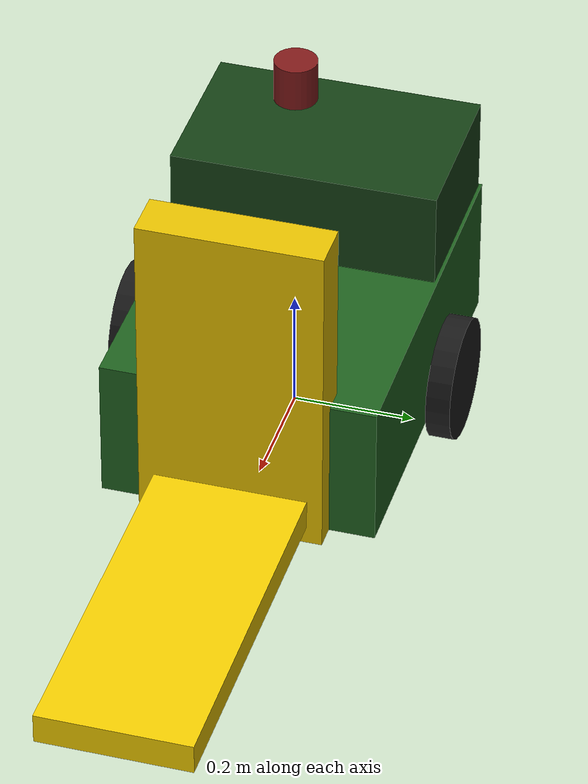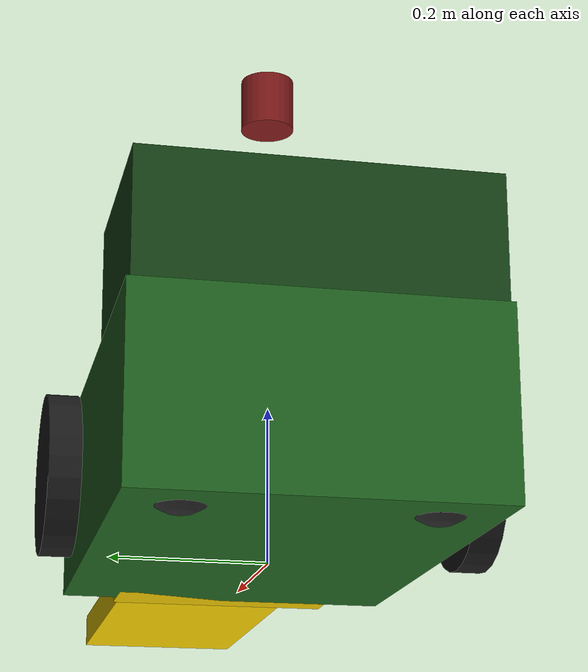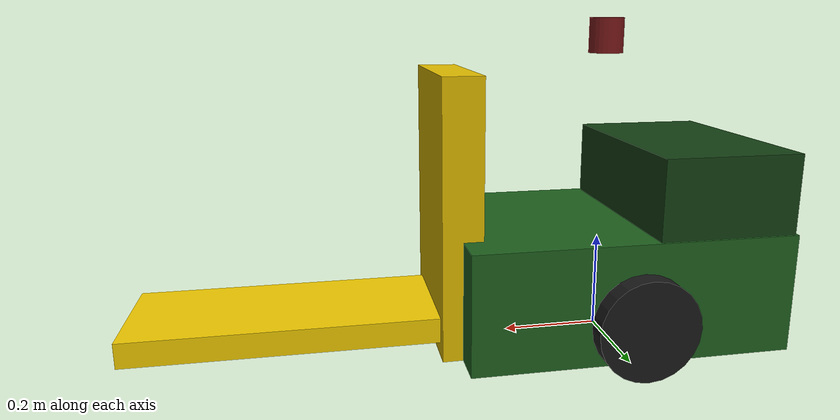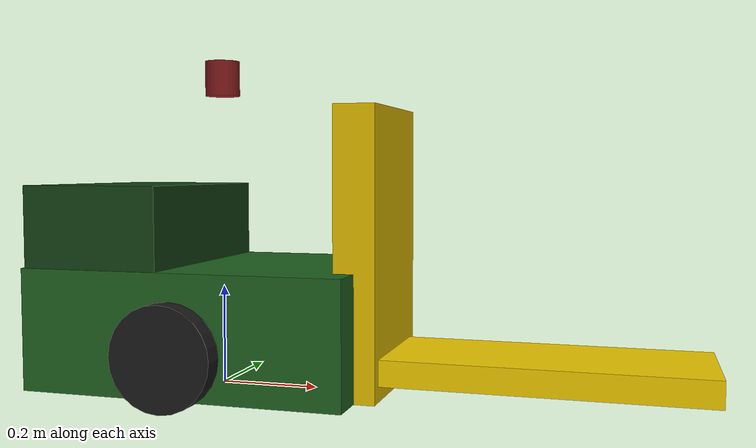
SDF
<?xml version="1.0" ?>
<sdf version="1.9">
  <model name="warehouse_forklift">
    <static>false</static>

    <!-- ══════════════════ LINKS ══════════════════ -->

    <!-- Virtual ground frame -->
    <link name="base_footprint">
      <pose>0 0 0 0 0 0</pose>
      <inertial>
        <mass>1e-9</mass>
        <inertia><ixx>1e-9</ixx><ixy>0</ixy><ixz>0</ixz>
                 <iyy>1e-9</iyy><iyz>0</iyz><izz>1e-9</izz></inertia>
      </inertial>
    </link>

    <!-- Main body — 0.65 × 0.45 × 0.24 m, green -->
    <link name="base_link">
      <pose>0 0 0.13 0 0 0</pose>
      <inertial>
        <mass>25.0</mass>
        <inertia>
          <ixx>0.542</ixx><ixy>0</ixy><ixz>0</ixz>
          <iyy>1.000</iyy><iyz>0</iyz><izz>1.302</izz>
        </inertia>
      </inertial>
      <collision name="base_collision">
        <geometry><box><size>0.65 0.45 0.24</size></box></geometry>
      </collision>
      <visual name="base_visual">
        <geometry><box><size>0.65 0.45 0.24</size></box></geometry>
        <material>
          <ambient>0.12 0.38 0.12 1</ambient>
          <diffuse>0.12 0.38 0.12 1</diffuse>
          <specular>0.05 0.1 0.05 1</specular>
        </material>
      </visual>
      <!-- Operator compartment — raised box on top-rear -->
      <visual name="cab_visual">
        <pose>-0.18 0 0.20 0 0 0</pose>
        <geometry><box><size>0.28 0.44 0.16</size></box></geometry>
        <material>
          <ambient>0.08 0.25 0.08 1</ambient>
          <diffuse>0.08 0.25 0.08 1</diffuse>
        </material>
      </visual>
    </link>

    <!-- Left drive wheel — cylinder R=0.10, L=0.04 -->
    <link name="wheel_left_link">
      <pose>0 0.265 0.10 -1.5708 0 0</pose>
      <inertial>
        <mass>1.5</mass>
        <inertia>
          <ixx>0.00395</ixx><ixy>0</ixy><ixz>0</ixz>
          <iyy>0.00395</iyy><iyz>0</iyz><izz>0.00750</izz>
        </inertia>
      </inertial>
      <collision name="wheel_left_collision">
        <geometry><cylinder><radius>0.10</radius><length>0.04</length></cylinder></geometry>
        <surface>
          <friction><ode><mu>1.5</mu><mu2>0.5</mu2></ode></friction>
        </surface>
      </collision>
      <visual name="wheel_left_visual">
        <geometry><cylinder><radius>0.10</radius><length>0.04</length></cylinder></geometry>
        <material><ambient>0.05 0.05 0.05 1</ambient><diffuse>0.1 0.1 0.1 1</diffuse></material>
      </visual>
    </link>

    <!-- Right drive wheel -->
    <link name="wheel_right_link">
      <pose>0 -0.265 0.10 -1.5708 0 0</pose>
      <inertial>
        <mass>1.5</mass>
        <inertia>
          <ixx>0.00395</ixx><ixy>0</ixy><ixz>0</ixz>
          <iyy>0.00395</iyy><iyz>0</iyz><izz>0.00750</izz>
        </inertia>
      </inertial>
      <collision name="wheel_right_collision">
        <geometry><cylinder><radius>0.10</radius><length>0.04</length></cylinder></geometry>
        <surface>
          <friction><ode><mu>1.5</mu><mu2>0.5</mu2></ode></friction>
        </surface>
      </collision>
      <visual name="wheel_right_visual">
        <geometry><cylinder><radius>0.10</radius><length>0.04</length></cylinder></geometry>
        <material><ambient>0.05 0.05 0.05 1</ambient><diffuse>0.1 0.1 0.1 1</diffuse></material>
      </visual>
    </link>

    <!-- Rear-left caster — sphere R=0.05 -->
    <link name="caster_back_left_link">
      <pose>-0.25 0.15 0.05 0 0 0</pose>
      <inertial>
        <mass>0.3</mass>
        <inertia>
          <ixx>0.0003</ixx><ixy>0</ixy><ixz>0</ixz>
          <iyy>0.0003</iyy><iyz>0</iyz><izz>0.0003</izz>
        </inertia>
      </inertial>
      <collision name="caster_back_left_collision">
        <geometry><sphere><radius>0.05</radius></sphere></geometry>
        <surface><friction><ode><mu>0.0</mu><mu2>0.0</mu2></ode></friction></surface>
      </collision>
      <visual name="caster_back_left_visual">
        <geometry><sphere><radius>0.05</radius></sphere></geometry>
        <material><ambient>0.1 0.1 0.1 1</ambient><diffuse>0.15 0.15 0.15 1</diffuse></material>
      </visual>
    </link>

    <!-- Rear-right caster -->
    <link name="caster_back_right_link">
      <pose>-0.25 -0.15 0.05 0 0 0</pose>
      <inertial>
        <mass>0.3</mass>
        <inertia>
          <ixx>0.0003</ixx><ixy>0</ixy><ixz>0</ixz>
          <iyy>0.0003</iyy><iyz>0</iyz><izz>0.0003</izz>
        </inertia>
      </inertial>
      <collision name="caster_back_right_collision">
        <geometry><sphere><radius>0.05</radius></sphere></geometry>
        <surface><friction><ode><mu>0.0</mu><mu2>0.0</mu2></ode></friction></surface>
      </collision>
      <visual name="caster_back_right_visual">
        <geometry><sphere><radius>0.05</radius></sphere></geometry>
        <material><ambient>0.1 0.1 0.1 1</ambient><diffuse>0.15 0.15 0.15 1</diffuse></material>
      </visual>
    </link>

    <!-- LiDAR link — raised to z=0.625 to clear fork_mast top (z≈0.560) -->
    <link name="base_scan">
      <pose>0 0 0.625 0 0 0</pose>
      <inertial>
        <mass>0.1</mass>
        <inertia>
          <ixx>7.15e-5</ixx><ixy>0</ixy><ixz>0</ixz>
          <iyy>7.15e-5</iyy><iyz>0</iyz><izz>6.13e-5</izz>
        </inertia>
      </inertial>
      <collision name="lidar_collision">
        <geometry><cylinder><radius>0.035</radius><length>0.07</length></cylinder></geometry>
      </collision>
      <visual name="lidar_visual">
        <geometry><cylinder><radius>0.035</radius><length>0.07</length></cylinder></geometry>
        <material><ambient>0.5 0.1 0.1 1</ambient><diffuse>0.5 0.1 0.1 1</diffuse></material>
      </visual>
      <sensor name="hls_lfcd_lds" type="gpu_lidar">
        <always_on>1</always_on>
        <visualize>false</visualize>
        <update_rate>5</update_rate>
        <topic>/scan</topic>
        <gz_frame_id>base_scan</gz_frame_id>
        <ray>
          <scan>
            <horizontal>
              <samples>360</samples>
              <resolution>1</resolution>
              <min_angle>0</min_angle>
              <max_angle>6.28318530718</max_angle>
            </horizontal>
            <vertical>
              <samples>1</samples>
              <min_angle>0</min_angle>
              <max_angle>0</max_angle>
            </vertical>
          </scan>
          <range>
            <min>0.12</min>
            <max>14.0</max>
          </range>
          <noise>
            <type>gaussian</type>
            <mean>0.0</mean>
            <stddev>0.01</stddev>
          </noise>
        </ray>
      </sensor>
    </link>

    <!-- Fork mast — 0.08 × 0.30 × 0.55 m, yellow -->
    <link name="fork_mast_link">
      <pose>0.325 0 0.285 0 0 0</pose>
      <inertial>
        <mass>3.0</mass>
        <inertia>
          <ixx>0.0981</ixx><ixy>0</ixy><ixz>0</ixz>
          <iyy>0.0772</iyy><iyz>0</iyz><izz>0.0241</izz>
        </inertia>
      </inertial>
      <collision name="mast_collision">
        <geometry><box><size>0.08 0.30 0.55</size></box></geometry>
      </collision>
      <visual name="mast_visual">
        <geometry><box><size>0.08 0.30 0.55</size></box></geometry>
        <material>
          <ambient>0.9 0.75 0.0 1</ambient>
          <diffuse>0.9 0.75 0.0 1</diffuse>
        </material>
      </visual>
    </link>

    <!-- S3 RGB camera + S4 Depth camera — front of body, looking forward -->
    <link name="camera_link">
      <pose>0.30 0 0.35 0 0 0</pose>
      <inertial>
        <mass>0.03</mass>
        <inertia>
          <ixx>1.25e-6</ixx><ixy>0</ixy><ixz>0</ixz>
          <iyy>1.25e-6</iyy><iyz>0</iyz><izz>1.25e-6</izz>
        </inertia>
      </inertial>
      <collision name="camera_collision">
        <geometry><box><size>0.03 0.08 0.02</size></box></geometry>
      </collision>
      <visual name="camera_visual">
        <geometry><box><size>0.03 0.08 0.02</size></box></geometry>
        <material>
          <ambient>0.2 0.2 0.8 1</ambient>
          <diffuse>0.2 0.2 0.8 1</diffuse>
        </material>
      </visual>
      <!-- S3 RGB camera (BẮT BUỘC) — ARMBench detector + Foxglove view -->
      <sensor name="rgb_camera" type="camera">
        <always_on>1</always_on>
        <visualize>false</visualize>
        <update_rate>15</update_rate>
        <topic>/camera/image</topic>
        <gz_frame_id>camera_link</gz_frame_id>
        <camera name="camera">
          <camera_info_topic>/camera/camera_info</camera_info_topic>
          <horizontal_fov>1.085595</horizontal_fov>
          <image>
            <width>640</width>
            <height>480</height>
            <format>R8G8B8</format>
          </image>
          <clip><near>0.1</near><far>12.0</far></clip>
          <noise><type>gaussian</type><mean>0.0</mean><stddev>0.007</stddev></noise>
        </camera>
      </sensor>
      <!-- S4 Depth camera (NÊN CÓ) — locate_object 3D pose -->
      <sensor name="depth_camera" type="depth_camera">
        <always_on>1</always_on>
        <visualize>false</visualize>
        <update_rate>10</update_rate>
        <topic>/camera/depth/image_raw</topic>
        <gz_frame_id>camera_optical_link</gz_frame_id>
        <camera name="depth">
          <horizontal_fov>1.085595</horizontal_fov>
          <image>
            <width>640</width>
            <height>480</height>
          </image>
          <clip><near>0.1</near><far>8.0</far></clip>
        </camera>
      </sensor>
    </link>

    <!-- S5 IMU (NÊN CÓ) — fuse with odom for stable localisation -->
    <link name="imu_link">
      <pose>0 0 0.13 0 0 0</pose>
      <inertial>
        <mass>0.001</mass>
        <inertia>
          <ixx>1e-7</ixx><ixy>0</ixy><ixz>0</ixz>
          <iyy>1e-7</iyy><iyz>0</iyz><izz>1e-7</izz>
        </inertia>
      </inertial>
      <sensor name="imu_sensor" type="imu">
        <always_on>1</always_on>
        <update_rate>100</update_rate>
        <topic>/imu</topic>
        <gz_frame_id>imu_link</gz_frame_id>
        <imu>
          <angular_velocity>
            <x><noise type="gaussian"><mean>0.0</mean><stddev>2e-4</stddev></noise></x>
            <y><noise type="gaussian"><mean>0.0</mean><stddev>2e-4</stddev></noise></y>
            <z><noise type="gaussian"><mean>0.0</mean><stddev>2e-4</stddev></noise></z>
          </angular_velocity>
          <linear_acceleration>
            <x><noise type="gaussian"><mean>0.0</mean><stddev>1.7e-2</stddev></noise></x>
            <y><noise type="gaussian"><mean>0.0</mean><stddev>1.7e-2</stddev></noise></y>
            <z><noise type="gaussian"><mean>0.0</mean><stddev>1.7e-2</stddev></noise></z>
          </linear_acceleration>
        </imu>
      </sensor>
    </link>

    <!-- Optical frame: z-forward / y-down (ROS camera convention for 2D→3D projection) -->
    <link name="camera_optical_link">
      <pose>0.30 0 0.35 -1.5708 0 -1.5708</pose>
      <inertial>
        <mass>1e-9</mass>
        <inertia>
          <ixx>1e-12</ixx><ixy>0</ixy><ixz>0</ixz>
          <iyy>1e-12</iyy><iyz>0</iyz><izz>1e-12</izz>
        </inertia>
      </inertial>
    </link>

    <!-- Fork carrier — box 0.60 × 0.25 × 0.05 m, yellow -->
    <link name="fork_link">
      <pose>0.365 0 0.04 0 0 0</pose>
      <inertial>
        <mass>2.0</mass>
        <inertia>
          <ixx>0.01083</ixx><ixy>0</ixy><ixz>0</ixz>
          <iyy>0.06042</iyy><iyz>0</iyz><izz>0.07042</izz>
        </inertia>
      </inertial>
      <!-- geometry offset 0.30 m forward of joint origin -->
      <collision name="fork_collision">
        <pose>0.30 0 0.025 0 0 0</pose>
        <geometry><box><size>0.60 0.25 0.05</size></box></geometry>
        <!-- P2: high friction + soft contact so the carried pallet does not
             micro-slide on the plate during accel/decel -->
        <surface>
          <friction><ode><mu>1.2</mu><mu2>1.2</mu2></ode></friction>
          <contact><ode><kp>100000</kp><kd>1000</kd></ode></contact>
        </surface>
      </collision>
      <visual name="fork_visual">
        <pose>0.30 0 0.025 0 0 0</pose>
        <geometry><box><size>0.60 0.25 0.05</size></box></geometry>
        <material>
          <ambient>0.95 0.8 0.0 1</ambient>
          <diffuse>0.95 0.8 0.0 1</diffuse>
        </material>
      </visual>
    </link>

    <!-- ══════════════════ JOINTS ══════════════════ -->

    <!-- base_footprint → base_link -->
    <joint name="base_joint" type="fixed">
      <parent>base_footprint</parent>
      <child>base_link</child>
      <pose>0 0 0 0 0 0</pose>
    </joint>

    <!-- Drive wheels -->
    <joint name="wheel_left_joint" type="revolute">
      <parent>base_link</parent>
      <child>wheel_left_link</child>
      <pose>0 0 0 0 0 0</pose>
      <axis>
        <xyz>0 0 1</xyz>
        <dynamics><damping>0.01</damping><friction>0.01</friction></dynamics>
      </axis>
    </joint>

    <joint name="wheel_right_joint" type="revolute">
      <parent>base_link</parent>
      <child>wheel_right_link</child>
      <pose>0 0 0 0 0 0</pose>
      <axis>
        <xyz>0 0 1</xyz>
        <dynamics><damping>0.01</damping><friction>0.01</friction></dynamics>
      </axis>
    </joint>

    <!-- Casters -->
    <joint name="caster_back_left_joint" type="ball">
      <parent>base_link</parent>
      <child>caster_back_left_link</child>
      <pose>0 0 0 0 0 0</pose>
    </joint>

    <joint name="caster_back_right_joint" type="ball">
      <parent>base_link</parent>
      <child>caster_back_right_link</child>
      <pose>0 0 0 0 0 0</pose>
    </joint>

    <!-- LiDAR -->
    <joint name="lidar_joint" type="fixed">
      <parent>base_link</parent>
      <child>base_scan</child>
      <pose>0 0 0 0 0 0</pose>
    </joint>

    <!-- Fork mast -->
    <joint name="mast_joint" type="fixed">
      <parent>base_link</parent>
      <child>fork_mast_link</child>
      <pose>0 0 0 0 0 0</pose>
    </joint>

    <!-- Camera -->
    <joint name="camera_joint" type="fixed">
      <parent>base_link</parent>
      <child>camera_link</child>
      <pose>0 0 0 0 0 0</pose>
    </joint>

    <!-- IMU -->
    <joint name="imu_joint" type="fixed">
      <parent>base_link</parent>
      <child>imu_link</child>
      <pose>0 0 0 0 0 0</pose>
    </joint>

    <!-- Optical frame: camera_link (x-fwd) → camera_optical_link (z-fwd, y-down) -->
    <joint name="camera_optical_joint" type="fixed">
      <parent>camera_link</parent>
      <child>camera_optical_link</child>
      <pose>0 0 0 0 0 0</pose>
    </joint>

    <!-- Fork: prismatic up/down on mast, start near ground (z≈0.04) -->
    <joint name="fork_joint" type="prismatic">
      <parent>fork_mast_link</parent>
      <child>fork_link</child>
      <pose>0 0 0 0 0 0</pose>
      <axis>
        <xyz>0 0 1</xyz>
        <limit>
          <lower>0.0</lower>
          <upper>0.30</upper>
          <effort>500</effort>
          <velocity>0.3</velocity>
        </limit>
        <dynamics><damping>50.0</damping><friction>5.0</friction></dynamics>
      </axis>
    </joint>

    <!-- ══════════════════ PLUGINS ══════════════════ -->

    <!-- Differential drive — same topic names as TB3 for bridge compatibility -->
    <plugin filename="gz-sim-diff-drive-system"
            name="gz::sim::systems::DiffDrive">
      <left_joint>wheel_left_joint</left_joint>
      <right_joint>wheel_right_joint</right_joint>
      <wheel_separation>0.53</wheel_separation>
      <wheel_radius>0.10</wheel_radius>
      <max_linear_acceleration>2.0</max_linear_acceleration>
      <min_linear_acceleration>-2.0</min_linear_acceleration>
      <max_angular_acceleration>3.0</max_angular_acceleration>
      <min_angular_acceleration>-3.0</min_angular_acceleration>
      <max_linear_velocity>0.8</max_linear_velocity>
      <min_linear_velocity>-0.8</min_linear_velocity>
      <max_angular_velocity>2.0</max_angular_velocity>
      <min_angular_velocity>-2.0</min_angular_velocity>
      <odom_publish_frequency>20</odom_publish_frequency>
      <topic>/cmd_vel</topic>
      <odom_topic>/odom</odom_topic>
      <tf_topic>/tf</tf_topic>
      <child_frame_id>base_footprint</child_frame_id>
      <frame_id>odom</frame_id>
    </plugin>

    <!-- Joint states — publishes wheel + fork positions -->
    <plugin filename="gz-sim-joint-state-publisher-system"
            name="gz::sim::systems::JointStatePublisher">
      <topic>/joint_states</topic>
    </plugin>

    <!-- Fork height controller: subscribes to /fork_cmd (gz.msgs.Double) -->
    <plugin filename="gz-sim-joint-position-controller-system"
            name="gz::sim::systems::JointPositionController">
      <joint_name>fork_joint</joint_name>
      <topic>/fork_cmd</topic>
      <p_gain>3000</p_gain>
      <i_gain>200.0</i_gain>
      <d_gain>300.0</d_gain>
      <i_max>300</i_max>
      <i_min>-300</i_min>
      <cmd_max>500</cmd_max>
      <cmd_min>-500</cmd_min>
    </plugin>

  </model>
</sdf>
